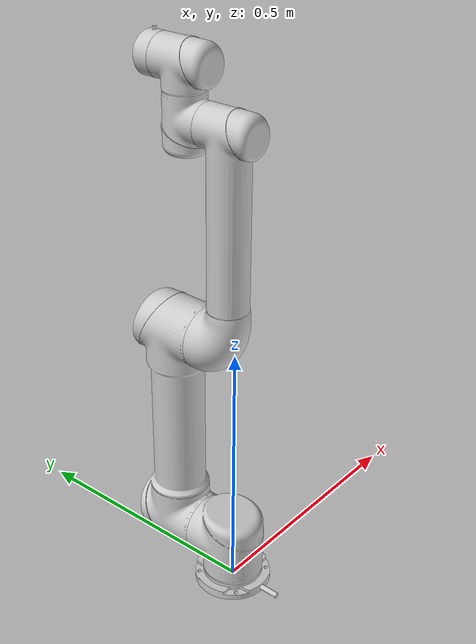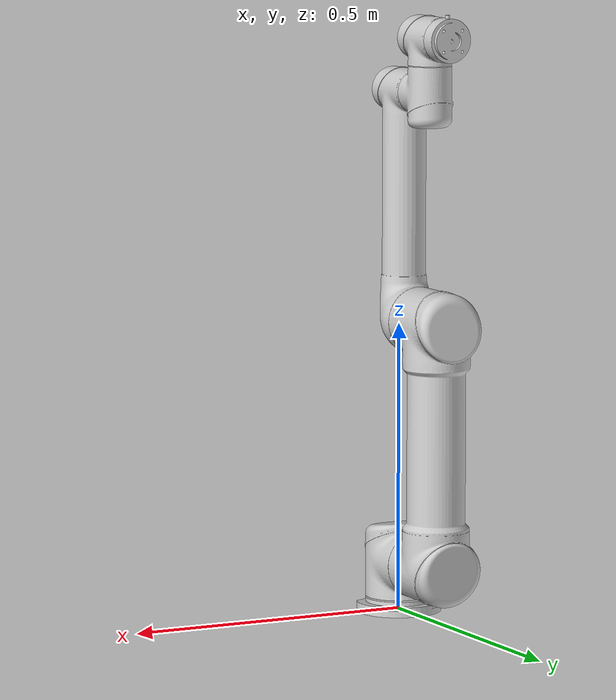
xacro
<?xml version="1.0"?>
<robot xmlns:xacro="http://ros.org/wiki/xacro" name="ur5_test" >

	<xacro:arg name="gripper" default="none" />

	<!-- Arbitrary offsets for shoulder/elbow joints -->
	<!-- shoulder_offset - elbow_offset + wrist_1_length = 0.10915 -->
	<xacro:property name="shoulder_offset" value="0.13585" />  <!-- measured from model -->
	<xacro:property name="elbow_offset" value="0.1197" /> <!-- measured from model -->

	<!-- Inertia parameters -->
	<xacro:property name="base_mass" value="4.0" />  <!-- This mass might be incorrect -->
	<xacro:property name="shoulder_mass" value="3.7000" />
	<xacro:property name="upper_arm_mass" value="8.3930" />
	<xacro:property name="forearm_mass" value="2.2750" />
	<xacro:property name="wrist_1_mass" value="1.2190" />
	<xacro:property name="wrist_2_mass" value="1.2190" />
	<xacro:property name="wrist_3_mass" value="0.1879" />

	<!-- link lengths used in model -->
	<xacro:property name="shoulder_height" value="0.089159" />
	<xacro:property name="upper_arm_length" value="0.42500" />
	<xacro:property name="forearm_length" value="0.39225" />
	<xacro:property name="wrist_1_length" value="0.093" />	<!-- CAD measured -->
	<xacro:property name="wrist_2_length" value="0.09465" />	<!-- In CAD this distance is 0.930, but in the spec it is 0.09465 -->
	<xacro:property name="wrist_3_length" value="0.0823" />

	<xacro:property name="shoulder_radius" value="0.060" />   <!-- manually measured -->
	<xacro:property name="upper_arm_radius" value="0.054" />  <!-- manually measured -->
	<xacro:property name="elbow_radius" value="0.060" />      <!-- manually measured -->
	<xacro:property name="forearm_radius" value="0.040" />    <!-- manually measured -->
	<xacro:property name="wrist_radius" value="0.045" />      <!-- manually measured -->

	<xacro:property name="box_dim" value="0.140" />      <!-- proposed -->

	<!-- Helper macros -->
	<xacro:macro name="inertial_macro" params="radius length mass">
		<inertial>
			<mass value="${mass}" />
			<inertia ixx="${0.0833333 * mass * (3 * radius * radius + length * length)}" ixy="0.0" ixz="0.0"
				iyy="${0.0833333 * mass * (3 * radius * radius + length * length)}" iyz="0.0"
				izz="${0.5 * mass * radius * radius}" />
			<origin xyz="0 0 ${length/2}" rpy="0 0 0"/>
		</inertial>
	</xacro:macro>

	<xacro:macro name="mesh_visual" params="*origin filename" >
		<visual>
			<geometry>
				<mesh filename="${filename}"/>
			</geometry>
			<xacro:insert_block name="origin" />
			<material name="Gray">
				<color rgba="0.8 0.8 0.8 1.0"/>
			</material>
		</visual>
	</xacro:macro>

	<!-- Macro for links -->
	<!-- Generic link -->
	<xacro:macro name="generic_link" params="name radius length mass filename *origin">
		<link name="${name}">

			<xacro:inertial_macro radius="${radius}" length="${length}" mass="${mass}"/>

			<xacro:mesh_visual filename="${filename}">
				<xacro:insert_block name="origin" />
			</xacro:mesh_visual>

		</link>
	</xacro:macro>

	<!-- Macro for joints -->
	<xacro:macro name="ur_joint" params="name parent child *origin *axis">
		<joint name="${name}" type="revolute">
			<xacro:insert_block name="origin" />
			<xacro:insert_block name="axis" />
			<limit lower="-3.1416" upper="3.1416" effort="150" velocity="3.1416" />
			<child link="${child}" />
			<parent link="${parent}" />
		</joint>
	</xacro:macro>

	<!-- Links -->
	<link name="base_link" >
		<xacro:mesh_visual filename="package://ur_description/meshes/ur5/visual/base.dae">
			<origin xyz="0 0 0" rpy="0 0 0"/>
		</xacro:mesh_visual>
	</link>

	<xacro:generic_link name="square_base" radius="${shoulder_radius}" length="${shoulder_height}"
		mass="${shoulder_mass}" filename="package://ur_description/meshes/ur5/visual/shoulder.dae" >
		<origin xyz="0 0 0" rpy="0 0 0"/>
	</xacro:generic_link>

	<xacro:generic_link name="upper_arm_link" radius="${upper_arm_radius}" length="${upper_arm_length}"
		mass="${upper_arm_mass}" filename="package://ur_description/meshes/ur5/visual/upperarm.dae" >
		<origin xyz="0 0 0" rpy="0 0 0"/>
	</xacro:generic_link>

	<xacro:generic_link name="forearm_link" radius="${forearm_radius}" length="${forearm_length}"
		mass="${forearm_mass}" filename="package://ur_description/meshes/ur5/visual/forearm.dae" >
		<origin xyz="0 0 0" rpy="0 0 0"/>
	</xacro:generic_link>

	<xacro:generic_link name="wrist_1_link" radius="${wrist_radius}" length="${wrist_1_length}"
		mass="${wrist_1_mass}" filename="package://ur_description/meshes/ur5/visual/wrist1.dae" >
		<origin xyz="0 0 0" rpy="0 0 0"/>
	</xacro:generic_link>

	<xacro:generic_link name="wrist_2_link" radius="${wrist_radius}" length="${wrist_2_length}"
		mass="${wrist_2_mass}" filename="package://ur_description/meshes/ur5/visual/wrist2.dae" >
		<origin xyz="0 0 0" rpy="0 0 0"/>
	</xacro:generic_link>

	<xacro:generic_link name="wrist_3_link" radius="${wrist_radius}" length="${wrist_3_length}"
		mass="${wrist_3_mass}" filename="package://ur_description/meshes/ur5/visual/wrist3.dae" >
		<origin xyz="0 0 0" rpy="0 0 0"/>
	</xacro:generic_link>

	<!-- Joints -->
	<xacro:ur_joint name="base" parent="base_link" child="square_base">
		<origin xyz="0 0 ${shoulder_height}" rpy="0 0 0"/>
		<axis xyz="0 0 1"/>
	</xacro:ur_joint>

	<xacro:ur_joint name="shoulder" parent="square_base" child="upper_arm_link">
		<origin xyz="0 ${shoulder_offset} 0" rpy="0 0 0"/>
		<axis xyz="0 1 0"/>
	</xacro:ur_joint>

	<xacro:ur_joint name="elbow" parent="upper_arm_link" child="forearm_link">
		<origin xyz="0 ${-elbow_offset} ${upper_arm_length}" rpy="0 0 0"/>
		<axis xyz="0 1 0"/>
	</xacro:ur_joint>

	<xacro:ur_joint name="wrist_1" parent="forearm_link" child="wrist_1_link">
		<origin xyz="0 0 ${forearm_length}" rpy="0 0 0"/>
		<axis xyz="0 1 0"/>
	</xacro:ur_joint>

	<xacro:ur_joint name="wrist_2" parent="wrist_1_link" child="wrist_2_link">
		<origin xyz="0 ${wrist_1_length} 0" rpy="0 0 0"/>
		<axis xyz="0 0 1"/>
	</xacro:ur_joint>

	<xacro:ur_joint name="wrist_3" parent="wrist_2_link" child="wrist_3_link">
		<origin xyz="0 0 ${wrist_2_length}" rpy="0 0 0"/>
		<axis xyz="0 1 0"/>
	</xacro:ur_joint>

	<xacro:if value="${'$(arg gripper)' == 'robotiq_2f_140'}">
		<xacro:include filename="$(find robotiq_2f_140_gripper_visualization)/urdf/robotiq_arg2f_140_model_macro.xacro" />
		<xacro:robotiq_arg2f_140 prefix="" />

		<joint name="gripper_to_wrist" type="fixed">
			<origin xyz="0 ${wrist_3_length} 0" rpy="-1.57 0 0" />
			<parent link="wrist_3_link" />
			<child link="robotiq_arg2f_base_link" />
		</joint>
	</xacro:if>

</robot>
